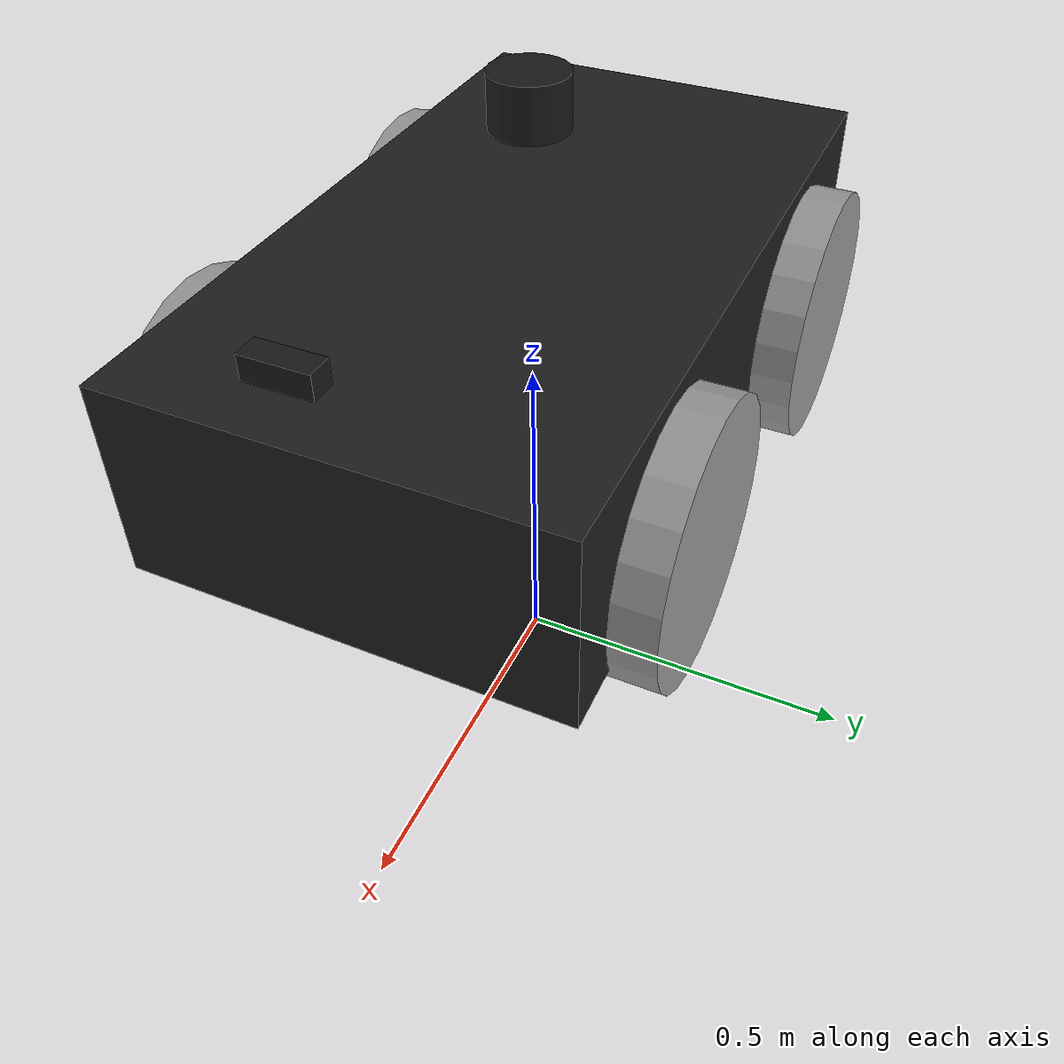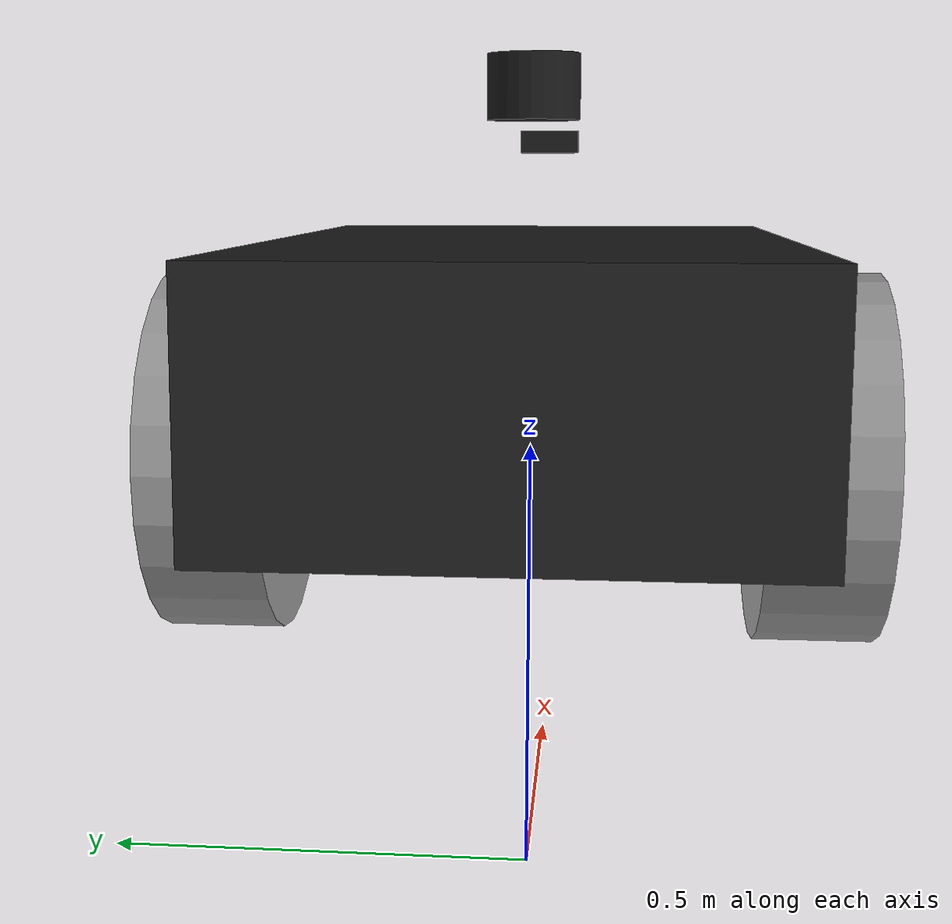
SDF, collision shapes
<?xml version="1.0" ?>
<sdf version="1.5">
  <model name="husky">
    <pose>0 0 .5 0 0 0</pose>

    <!-- Main Chassis -->
    <link name="base_link">
      <!-- Physics -->
      <collision name="collision">
        <pose>0 0 0.1 0 0 0</pose>
        <geometry>
          <box>
            <size>1.0074 0.5709 0.2675</size>
          </box>
        </geometry>
      </collision>
      <inertial>
        <mass>33.855</mass>
        <pose>-0.0856132 -0.000839955 0.238145 0 0 0</pose>
        <inertia>
          <ixx>2.2343</ixx>
          <ixy>-0.023642</ixy>
          <ixz>0.275174</ixz>
          <iyy>3.42518</iyy>
          <iyz>0.00239624</iyz>
          <izz>2.1241</izz>
        </inertia>
      </inertial>

      <!-- Visual -->
      <!-- Base frame -->
      <visual name="base">
        <pose>0 0 0 0 0 0</pose>
        <geometry>
          <mesh>
            <uri>model://husky/meshes/base_link.stl</uri>
          </mesh>
        </geometry>
        <material>
          <script>
            <name>Gazebo/FlatBlack</name>
          </script>
        </material>
      </visual>

      <!-- Top Plate -->
      <visual name="top_plate">
        <pose>0 0 0 0 0 0</pose>
        <geometry>
          <mesh>
            <uri>model://husky/meshes/top_plate.stl</uri>
          </mesh>
        </geometry>
        <material>
          <script>
            <name>Gazebo/Yellow</name>
          </script>
        </material>
      </visual>

      <!-- Front Bumper -->
      <visual name="front_bumper">
        <pose>0.47 0 0.091 0 0 0</pose>
        <geometry>
          <mesh>
            <uri>model://husky/meshes/bumper.stl</uri>
          </mesh>
        </geometry>
        <material>
          <script>
            <name>Gazebo/FlatBlack</name>
          </script>
        </material>
      </visual>

      <!-- Rear Bumper -->
      <visual name="rear_bumper">
        <pose>-0.47 0 0.091 0 0 3.141</pose>
        <geometry>
          <mesh>
            <uri>model://husky/meshes/bumper.stl</uri>
          </mesh>
        </geometry>
        <material>
          <script>
            <name>Gazebo/FlatBlack</name>
          </script>
        </material>
      </visual>

      <!-- User Rail -->
      <visual name="user_rail">
        <pose>0.272 0 0.245 0 0 0</pose>
        <geometry>
          <mesh>
            <uri>model://husky/meshes/user_rail.stl</uri>
          </mesh>
        </geometry>
        <material>
          <script>
            <name>Gazebo/Grey</name>
          </script>
        </material>
      </visual>
    </link>

    <!-- ================= VELODYNE VLP-16 LIDAR ================= -->
    <link name="velodyne_base_link">
      <pose>0 0 0.4 0 0 0</pose>  <!-- Montado encima del Husky -->
      <inertial>
        <mass>0.83</mass>
        <pose>0 0 0 0 0 0</pose>
        <inertia>
          <ixx>0.001</ixx>
          <ixy>0</ixy>
          <ixz>0</ixz>
          <iyy>0.001</iyy>
          <iyz>0</iyz>
          <izz>0.001</izz>
        </inertia>
      </inertial>

      <!-- Visual del Velodyne -->
      <collision name='velodyne_base_collision'>
        <geometry>
          <cylinder>
            <radius>0.0516</radius>
            <length>0.0717</length>
          </cylinder>
        </geometry>
      </collision>

      <visual name='velodyne_base_visual'>
        <geometry>
          <cylinder>
            <radius>0.0516</radius>
            <length>0.0717</length>
          </cylinder>
        </geometry>
        <material>
          <ambient>0.1 0.1 0.1 1</ambient>
          <diffuse>0.1 0.1 0.1 1</diffuse>
          <specular>0.1 0.1 0.1 1</specular>
        </material>
      </visual>

      <!-- Sensor LiDAR Velodyne VLP-16 -->
      <sensor name='velodyne-VLP16' type='gpu_ray'>
        <pose>0 0 0.0377 0 0 0</pose>
        <visualize>false</visualize>
        <update_rate>10</update_rate>
        <ray>
          <scan>
            <horizontal>
              <samples>1875</samples>
              <resolution>1</resolution>
              <min_angle>-3.14159</min_angle>
              <max_angle>3.14159</max_angle>
            </horizontal>
            <vertical>
              <samples>16</samples>
              <resolution>1</resolution>
              <min_angle>-0.261799</min_angle>
              <max_angle>0.261799</max_angle>
            </vertical>
          </scan>
          <range>
            <min>0.3</min>
            <max>130.0</max>
            <resolution>0.001</resolution>
          </range>
          <noise>
            <type>gaussian</type>
            <mean>0.0</mean>
            <stddev>0.008</stddev>
          </noise>
        </ray>

        <plugin name='gazebo_ros_laser_controller' filename='libgazebo_ros_velodyne_gpu_laser.so'>
          <topicName>/velodyne_points</topicName>
          <frameName>husky/velodyne_base_link</frameName>
          <min_range>0.9</min_range>
          <max_range>130.0</max_range>
          <gaussianNoise>0.008</gaussianNoise>
        </plugin>
      </sensor>
    </link>

    <!-- Joint para montar el Velodyne al Husky -->
    <joint name='velodyne_base_mount_joint' type='fixed'>
      <parent>base_link</parent>
      <child>velodyne_base_link</child>
    </joint>

    <!-- ================= IMU SENSOR ================= -->
    <link name='imu_link'>
      <pose>0 0 0.2 0 0 0</pose>  <!-- Dentro del chasis -->
      <inertial>
        <mass>0.015</mass>
        <inertia>
          <ixx>0.0001</ixx>
          <ixy>0</ixy>
          <ixz>0</ixz>
          <iyy>0.0001</iyy>
          <iyz>0</iyz>
          <izz>0.0001</izz>
        </inertia>
      </inertial>

      <collision name='imu_collision'>
        <geometry>
          <box>
            <size>0.05 0.05 0.02</size>
          </box>
        </geometry>
      </collision>

      <visual name='imu_visual'>
        <geometry>
          <box>
            <size>0.05 0.05 0.02</size>
          </box>
        </geometry>
        <material>
          <ambient>0.3 0.3 0.3 1</ambient>
          <diffuse>0.3 0.3 0.3 1</diffuse>
        </material>
      </visual>

      <!-- Sensor IMU -->
      <sensor name='imu_sensor' type='imu'>
        <always_on>1</always_on>
        <update_rate>100</update_rate>
        <visualize>true</visualize>
        <imu>
          <angular_velocity>
            <x>
              <noise type='gaussian'>
                <mean>0</mean>
                <stddev>0.009</stddev>
                <bias_mean>0.00075</bias_mean>
                <bias_stddev>0.005</bias_stddev>
                <dynamic_bias_stddev>0.00002</dynamic_bias_stddev>
                <dynamic_bias_correlation_time>400.0</dynamic_bias_correlation_time>
                <precision>0.00025</precision>
              </noise>
            </x>
            <y>
              <noise type='gaussian'>
                <mean>0</mean>
                <stddev>0.009</stddev>
                <bias_mean>0.00075</bias_mean>
                <bias_stddev>0.005</bias_stddev>
                <dynamic_bias_stddev>0.00002</dynamic_bias_stddev>
                <dynamic_bias_correlation_time>400.0</dynamic_bias_correlation_time>
                <precision>0.00025</precision>
              </noise>
            </y>
            <z>
              <noise type='gaussian'>
                <mean>0</mean>
                <stddev>0.009</stddev>
                <bias_mean>0.00075</bias_mean>
                <bias_stddev>0.005</bias_stddev>
                <dynamic_bias_stddev>0.00002</dynamic_bias_stddev>
                <dynamic_bias_correlation_time>400.0</dynamic_bias_correlation_time>
                <precision>0.00025</precision>
              </noise>
            </z>
          </angular_velocity>
          <linear_acceleration>
            <x>
              <noise type='gaussian'>
                <mean>0</mean>
                <stddev>0.021</stddev>
                <bias_mean>0.05</bias_mean>
                <bias_stddev>0.0075</bias_stddev>
                <dynamic_bias_stddev>0.000375</dynamic_bias_stddev>
                <dynamic_bias_correlation_time>175.0</dynamic_bias_correlation_time>
                <precision>0.005</precision>
              </noise>
            </x>
            <y>
              <noise type='gaussian'>
                <mean>0</mean>
                <stddev>0.021</stddev>
                <bias_mean>0.05</bias_mean>
                <bias_stddev>0.0075</bias_stddev>
                <dynamic_bias_stddev>0.000375</dynamic_bias_stddev>
                <dynamic_bias_correlation_time>175.0</dynamic_bias_correlation_time>
                <precision>0.005</precision>
              </noise>
            </y>
            <z>
              <noise type='gaussian'>
                <mean>0</mean>
                <stddev>0.021</stddev>
                <bias_mean>0.05</bias_mean>
                <bias_stddev>0.0075</bias_stddev>
                <dynamic_bias_stddev>0.000375</dynamic_bias_stddev>
                <dynamic_bias_correlation_time>175.0</dynamic_bias_correlation_time>
                <precision>0.005</precision>
              </noise>
            </z>
          </linear_acceleration>
        </imu>

        <plugin name='imu_plugin' filename='libgazebo_ros_imu_sensor.so'>
          <topicName>/imu/data</topicName>
          <bodyName>imu_link</bodyName>
          <updateRateHZ>100.0</updateRateHZ>
          <gaussianNoise>0.0</gaussianNoise>
          <xyzOffset>0 0 0</xyzOffset>
          <rpyOffset>0 0 0</rpyOffset>
          <frameName>husky/imu_link</frameName>
          <initialOrientationAsReference>false</initialOrientationAsReference>
        </plugin>
      </sensor>
    </link>

    <joint name='imu_joint' type='fixed'>
      <parent>base_link</parent>
      <child>imu_link</child>
    </joint>

    <!-- ================= WHEELS ================= -->

    <!-- Back Left Wheel -->
    <link name="back_left_wheel">
      <pose>-0.256 0.285475 0.035 0 0 0</pose>
      <inertial>
        <mass>2.6357</mass>
        <pose>0 0 0 0 0 0</pose>
        <inertia>
          <ixx>0.0246688</ixx>
          <ixy>0</ixy>
          <ixz>0</ixz>
          <iyy>0.0246688</iyy>
          <iyz>0</iyz>
          <izz>0.0441058</izz>
        </inertia>
      </inertial>
      <collision name="back_left_wheel_collision">
        <pose>0 0 0 -1.5707 0 0</pose>
        <geometry>
          <cylinder>
            <radius>0.17775</radius>
            <length>0.1143</length>
          </cylinder>
        </geometry>
        <surface>
          <friction>
            <ode>
              <mu>100000.0</mu>
              <mu2>100000.0</mu2>
              <slip1>0.0</slip1>
              <slip2>0.1</slip2>
            </ode>
          </friction>
        </surface>
      </collision>
      <visual name="back_left_wheel">
        <pose>0 0 0 -3.14159 0 0</pose>
        <geometry>
          <mesh>
            <uri>model://husky/meshes/wheel.stl</uri>
          </mesh>
        </geometry>
        <material>
          <script>
            <name>Gazebo/Grey</name>
          </script>
        </material>
      </visual>
    </link>

    <joint name="back_left_joint" type="revolute">
      <parent>base_link</parent>
      <child>back_left_wheel</child>
      <axis>
        <xyz>0 1 0</xyz>
        <use_parent_model_frame>true</use_parent_model_frame>
      </axis>
      <physics>
        <ode>
          <limit>
            <cfm>0.000000</cfm>
            <erp>0.900000</erp>
          </limit>
        </ode>
      </physics>
    </joint>

    <!-- Back Right Wheel -->
    <link name="back_right_wheel">
      <pose>-0.256 -0.285475 0.035 0 0 0</pose>
      <inertial>
        <mass>2.6357</mass>
        <pose>0 0 0 0 0 0</pose>
        <inertia>
          <ixx>0.0246688</ixx>
          <ixy>0</ixy>
          <ixz>0</ixz>
          <iyy>0.0246688</iyy>
          <iyz>0</iyz>
          <izz>0.0441058</izz>
        </inertia>
      </inertial>
      <collision name="back_right_wheel_collision">
        <pose>0 0 0 -1.5707 0 0</pose>
        <geometry>
          <cylinder>
            <radius>0.17775</radius>
            <length>0.1143</length>
          </cylinder>
        </geometry>
        <surface>
          <friction>
            <ode>
              <mu>100000.0</mu>
              <mu2>100000.0</mu2>
              <slip1>0.0</slip1>
              <slip2>0.1</slip2>
            </ode>
          </friction>
        </surface>
      </collision>
      <visual name="back_right_wheel">
        <pose>0 0 0 -3.14159 0 0</pose>
        <geometry>
          <mesh>
            <uri>model://husky/meshes/wheel.stl</uri>
          </mesh>
        </geometry>
        <material>
          <script>
            <name>Gazebo/Grey</name>
          </script>
        </material>
      </visual>
    </link>

    <joint name="back_right_joint" type="revolute">
      <parent>base_link</parent>
      <child>back_right_wheel</child>
      <axis>
        <xyz>0 1 0</xyz>
        <use_parent_model_frame>true</use_parent_model_frame>
      </axis>
      <physics>
        <ode>
          <limit>
            <cfm>0.000000</cfm>
            <erp>0.900000</erp>
          </limit>
        </ode>
      </physics>
    </joint>

    <!-- Front Left Wheel -->
    <link name="front_left_wheel">
      <pose>0.256 0.285475 0.035 0 0 0</pose>
      <inertial>
        <mass>2.6357</mass>
        <pose>0 0 0 0 0 0</pose>
        <inertia>
          <ixx>0.0246688</ixx>
          <ixy>0</ixy>
          <ixz>0</ixz>
          <iyy>0.0246688</iyy>
          <iyz>0</iyz>
          <izz>0.0441058</izz>
        </inertia>
      </inertial>
      <collision name="front_left_wheel_collision">
        <pose>0 0 0 -1.5707 0 0</pose>
        <geometry>
          <cylinder>
            <radius>0.17775</radius>
            <length>0.1143</length>
          </cylinder>
        </geometry>
        <surface>
          <friction>
            <ode>
              <mu>100000.0</mu>
              <mu2>100000.0</mu2>
              <slip1>0.0</slip1>
              <slip2>0.1</slip2>
            </ode>
          </friction>
        </surface>
      </collision>
      <visual name="front_left_wheel">
        <pose>0 0 0 -3.14159 0 0</pose>
        <geometry>
          <mesh>
            <uri>model://husky/meshes/wheel.stl</uri>
          </mesh>
        </geometry>
        <material>
          <script>
            <name>Gazebo/Grey</name>
          </script>
        </material>
      </visual>
    </link>

    <joint name="front_left_joint" type="revolute">
      <parent>base_link</parent>
      <child>front_left_wheel</child>
      <axis>
        <xyz>0 1 0</xyz>
        <use_parent_model_frame>true</use_parent_model_frame>
      </axis>
      <physics>
        <ode>
          <limit>
            <cfm>0.000000</cfm>
            <erp>0.900000</erp>
          </limit>
        </ode>
      </physics>
    </joint>

    <!-- Front Right Wheel -->
    <link name="front_right_wheel">
      <pose>0.256 -0.285475 0.035 0 0 0</pose>
      <inertial>
        <mass>2.6357</mass>
        <pose>0 0 0 0 0 0</pose>
        <inertia>
          <ixx>0.0246688</ixx>
          <ixy>0</ixy>
          <ixz>0</ixz>
          <iyy>0.0246688</iyy>
          <iyz>0</iyz>
          <izz>0.0441058</izz>
        </inertia>
      </inertial>
      <collision name="front_right_wheel_collision">
        <pose>0 0 0 -1.5707 0 0</pose>
        <geometry>
          <cylinder>
            <radius>0.17775</radius>
            <length>0.1143</length>
          </cylinder>
        </geometry>
        <surface>
          <friction>
            <ode>
              <mu>100000.0</mu>
              <mu2>100000.0</mu2>
              <slip1>0.0</slip1>
              <slip2>0.1</slip2>
            </ode>
          </friction>
        </surface>
      </collision>
      <visual name="front_right_wheel">
        <pose>0 0 0 -3.14159 0 0</pose>
        <geometry>
          <mesh>
            <uri>model://husky/meshes/wheel.stl</uri>
          </mesh>
        </geometry>
        <material>
          <script>
            <name>Gazebo/Grey</name>
          </script>
        </material>
      </visual>
    </link>

    <joint name="front_right_joint" type="revolute">
      <parent>base_link</parent>
      <child>front_right_wheel</child>
      <axis>
        <xyz>0 1 0</xyz>
        <use_parent_model_frame>true</use_parent_model_frame>
      </axis>
      <physics>
        <ode>
          <limit>
            <cfm>0.000000</cfm>
            <erp>0.900000</erp>
          </limit>
        </ode>
      </physics>
    </joint>

    <!-- ================= CAMERA ================= -->

    <link name='camera_link'>
      <pose>0.52 0 0.35 0 0 0</pose>
      <inertial>
        <mass>0.01</mass>
        <inertia>
          <ixx>0.0001</ixx>
          <ixy>0</ixy>
          <ixz>0</ixz>
          <iyy>0.0001</iyy>
          <iyz>0</iyz>
          <izz>0.0001</izz>
        </inertia>
      </inertial>

      <collision name='camera_collision'>
        <geometry>
          <box>
            <size>0.03 0.08 0.03</size>
          </box>
        </geometry>
      </collision>

      <visual name='camera_visual'>
        <geometry>
          <box>
            <size>0.03 0.08 0.03</size>
          </box>
        </geometry>
        <material>
          <ambient>0.1 0.1 0.1 1</ambient>
          <diffuse>0.1 0.1 0.1 1</diffuse>
        </material>
      </visual>

      <!-- Sensor de Camara -->
      <sensor name='camera_sensor' type='camera'>
        <update_rate>30</update_rate>
        <camera name='head'>
          <horizontal_fov>1.3962634</horizontal_fov>
          <image>
            <width>640</width>
            <height>480</height>
            <format>R8G8B8</format>
          </image>
          <clip>
            <near>0.02</near>
            <far>300</far>
          </clip>
          <noise>
            <type>gaussian</type>
            <mean>0.0</mean>
            <stddev>0.007</stddev>
          </noise>
        </camera>
        <plugin name='camera_controller' filename='libgazebo_ros_camera.so'>
          <alwaysOn>true</alwaysOn>
          <updateRate>0.0</updateRate>
          <cameraName>camera</cameraName>
          <imageTopicName>/camera/image_raw</imageTopicName>
          <cameraInfoTopicName>/camera/camera_info</cameraInfoTopicName>
          <frameName>husky/camera_optical_frame</frameName>
          <hackBaseline>0.07</hackBaseline>
          <distortionK1>0.0</distortionK1>
          <distortionK2>0.0</distortionK2>
          <distortionK3>0.0</distortionK3>
          <distortionT1>0.0</distortionT1>
          <distortionT2>0.0</distortionT2>
        </plugin>
      </sensor>
    </link>

    <joint name='camera_joint' type='fixed'>
      <parent>base_link</parent>
      <child>camera_link</child>
    </joint>

    <!-- Optical frame -->
    <link name='camera_optical_frame'>
      <pose relative_to="camera_link">0 0 0 -1.5707963267948966 0 -1.5707963267948966</pose>
      <inertial>
        <mass>0.001</mass>
        <inertia>
          <ixx>0.00001</ixx>
          <ixy>0</ixy>
          <ixz>0</ixz>
          <iyy>0.00001</iyy>
          <iyz>0</iyz>
          <izz>0.00001</izz>
        </inertia>
      </inertial>
    </link>

    <joint name='camera_optical_joint' type='fixed'>
      <parent>camera_link</parent>
      <child>camera_optical_frame</child>
    </joint>

    <!-- ================= CONTROLLER PLUGIN ================= -->
    <!-- Diff drive: maneja velocidades lineales+angulares simultaneamente -->
    <plugin name='diff_drive' filename='libgazebo_ros_diff_drive.so'>
      <robotNamespace>/husky</robotNamespace>
      <leftJoint>front_left_joint</leftJoint>
      <rightJoint>front_right_joint</rightJoint>
      <leftJoint>back_left_joint</leftJoint>
      <rightJoint>back_right_joint</rightJoint>
      <wheelSeparation>0.5709</wheelSeparation>
      <wheelDiameter>0.3555</wheelDiameter>
      <wheelTorque>70</wheelTorque>
      <wheelAcceleration>2.0</wheelAcceleration>
      <odometryFrame>odom</odometryFrame>
      <robotBaseFrame>husky/base_link</robotBaseFrame>
      <publishOdom>false</publishOdom>
      <publishOdomTF>false</publishOdomTF>
      <publishWheelTF>false</publishWheelTF>
      <publishWheelJointState>true</publishWheelJointState>
      <commandTopic>cmd_vel</commandTopic>
      <odometryTopic>odom</odometryTopic>
      <updateRate>100</updateRate>
    </plugin>

  </model>
</sdf>
